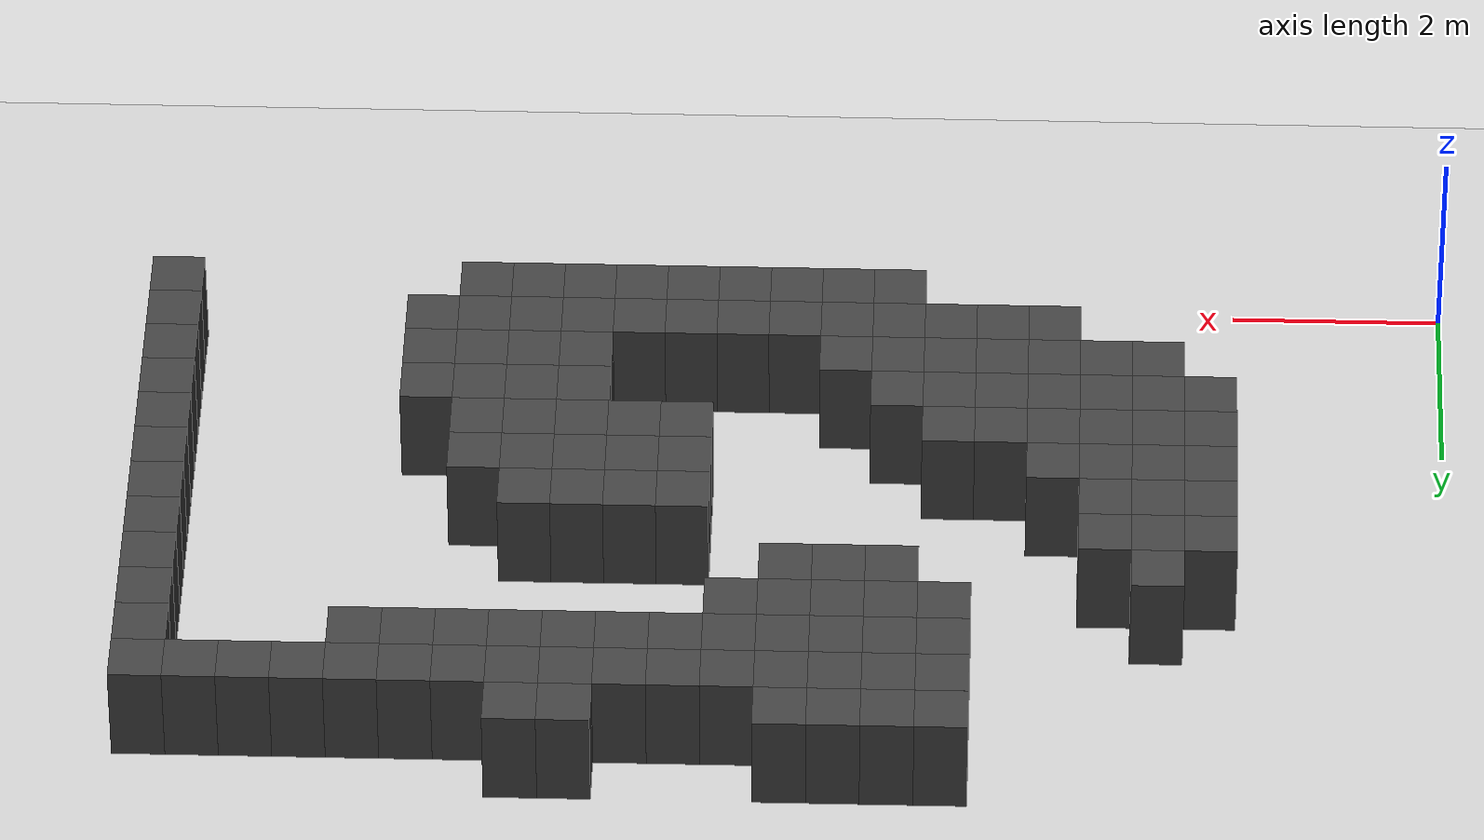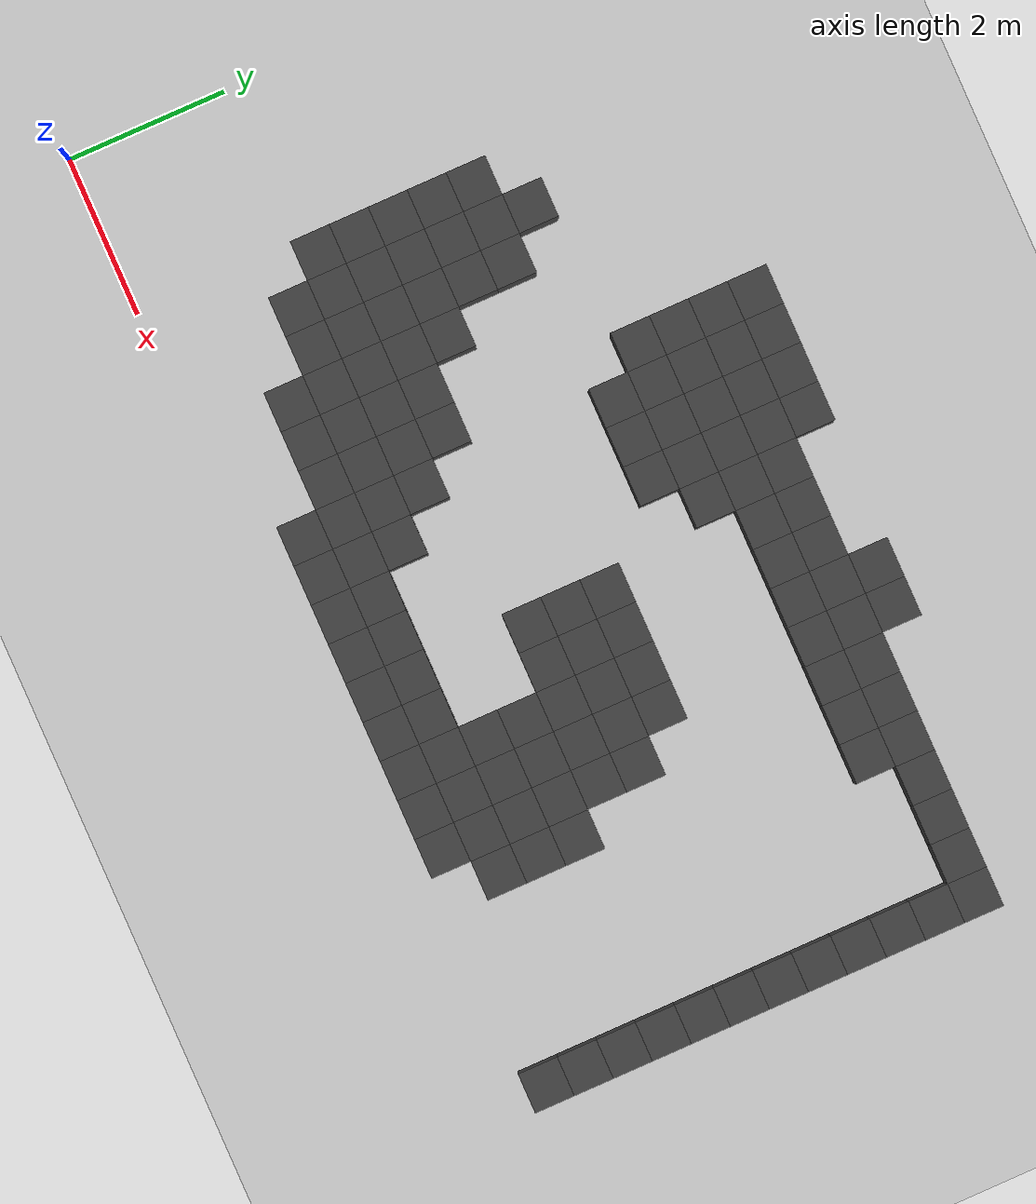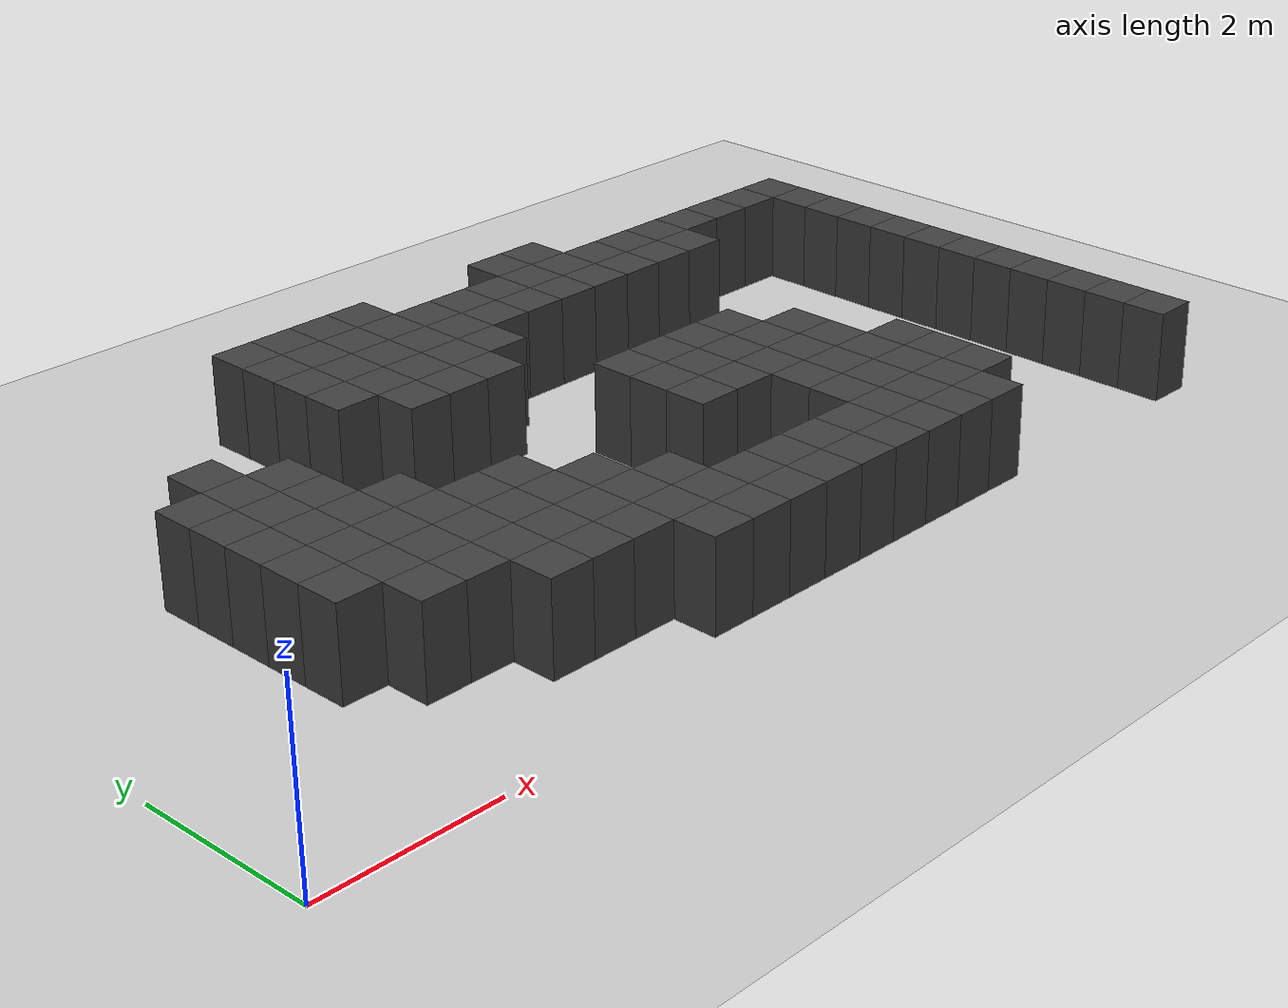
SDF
<sdf version="1.7">
 <world name="map_8843">
  <model name="ground_plane">
   <static>true</static>
   <link name="link">
    <collision name="collision">
     <geometry><plane><normal>0 0 1</normal><size>200 200</size></plane></geometry>
    </collision>
    <visual name="visual">
     <geometry><plane><normal>0 0 1</normal><size>200 200</size></plane></geometry>
     <material><ambient>0.8 0.8 0.8 1</ambient><diffuse>0.8 0.8 0.8 1</diffuse></material>
    </visual>
   </link>
  </model>
  <model name="maze_environment">
   <static>true</static>
   <link name="wall_264">
    <pose>4.750 6.750 0.500 0 0 0</pose>
    <collision name="col"><geometry><box><size>0.5 0.5 1.0</size></box></geometry></collision>
    <visual name="vis">
     <geometry><box><size>0.5 0.5 1.0</size></box></geometry>
     <material><ambient>0.15 0.15 0.15 1</ambient><diffuse>0.25 0.25 0.25 1</diffuse></material>
    </visual>
   </link>
   <link name="wall_265">
    <pose>5.250 6.750 0.500 0 0 0</pose>
    <collision name="col"><geometry><box><size>0.5 0.5 1.0</size></box></geometry></collision>
    <visual name="vis">
     <geometry><box><size>0.5 0.5 1.0</size></box></geometry>
     <material><ambient>0.15 0.15 0.15 1</ambient><diffuse>0.25 0.25 0.25 1</diffuse></material>
    </visual>
   </link>
   <link name="wall_266">
    <pose>5.750 6.750 0.500 0 0 0</pose>
    <collision name="col"><geometry><box><size>0.5 0.5 1.0</size></box></geometry></collision>
    <visual name="vis">
     <geometry><box><size>0.5 0.5 1.0</size></box></geometry>
     <material><ambient>0.15 0.15 0.15 1</ambient><diffuse>0.25 0.25 0.25 1</diffuse></material>
    </visual>
   </link>
   <link name="wall_267">
    <pose>6.250 6.750 0.500 0 0 0</pose>
    <collision name="col"><geometry><box><size>0.5 0.5 1.0</size></box></geometry></collision>
    <visual name="vis">
     <geometry><box><size>0.5 0.5 1.0</size></box></geometry>
     <material><ambient>0.15 0.15 0.15 1</ambient><diffuse>0.25 0.25 0.25 1</diffuse></material>
    </visual>
   </link>
   <link name="wall_268">
    <pose>8.250 6.750 0.500 0 0 0</pose>
    <collision name="col"><geometry><box><size>0.5 0.5 1.0</size></box></geometry></collision>
    <visual name="vis">
     <geometry><box><size>0.5 0.5 1.0</size></box></geometry>
     <material><ambient>0.15 0.15 0.15 1</ambient><diffuse>0.25 0.25 0.25 1</diffuse></material>
    </visual>
   </link>
   <link name="wall_269">
    <pose>8.750 6.750 0.500 0 0 0</pose>
    <collision name="col"><geometry><box><size>0.5 0.5 1.0</size></box></geometry></collision>
    <visual name="vis">
     <geometry><box><size>0.5 0.5 1.0</size></box></geometry>
     <material><ambient>0.15 0.15 0.15 1</ambient><diffuse>0.25 0.25 0.25 1</diffuse></material>
    </visual>
   </link>
   <link name="wall_283">
    <pose>4.750 6.250 0.500 0 0 0</pose>
    <collision name="col"><geometry><box><size>0.5 0.5 1.0</size></box></geometry></collision>
    <visual name="vis">
     <geometry><box><size>0.5 0.5 1.0</size></box></geometry>
     <material><ambient>0.15 0.15 0.15 1</ambient><diffuse>0.25 0.25 0.25 1</diffuse></material>
    </visual>
   </link>
   <link name="wall_284">
    <pose>5.250 6.250 0.500 0 0 0</pose>
    <collision name="col"><geometry><box><size>0.5 0.5 1.0</size></box></geometry></collision>
    <visual name="vis">
     <geometry><box><size>0.5 0.5 1.0</size></box></geometry>
     <material><ambient>0.15 0.15 0.15 1</ambient><diffuse>0.25 0.25 0.25 1</diffuse></material>
    </visual>
   </link>
   <link name="wall_285">
    <pose>5.750 6.250 0.500 0 0 0</pose>
    <collision name="col"><geometry><box><size>0.5 0.5 1.0</size></box></geometry></collision>
    <visual name="vis">
     <geometry><box><size>0.5 0.5 1.0</size></box></geometry>
     <material><ambient>0.15 0.15 0.15 1</ambient><diffuse>0.25 0.25 0.25 1</diffuse></material>
    </visual>
   </link>
   <link name="wall_286">
    <pose>6.250 6.250 0.500 0 0 0</pose>
    <collision name="col"><geometry><box><size>0.5 0.5 1.0</size></box></geometry></collision>
    <visual name="vis">
     <geometry><box><size>0.5 0.5 1.0</size></box></geometry>
     <material><ambient>0.15 0.15 0.15 1</ambient><diffuse>0.25 0.25 0.25 1</diffuse></material>
    </visual>
   </link>
   <link name="wall_287">
    <pose>6.750 6.250 0.500 0 0 0</pose>
    <collision name="col"><geometry><box><size>0.5 0.5 1.0</size></box></geometry></collision>
    <visual name="vis">
     <geometry><box><size>0.5 0.5 1.0</size></box></geometry>
     <material><ambient>0.15 0.15 0.15 1</ambient><diffuse>0.25 0.25 0.25 1</diffuse></material>
    </visual>
   </link>
   <link name="wall_288">
    <pose>7.250 6.250 0.500 0 0 0</pose>
    <collision name="col"><geometry><box><size>0.5 0.5 1.0</size></box></geometry></collision>
    <visual name="vis">
     <geometry><box><size>0.5 0.5 1.0</size></box></geometry>
     <material><ambient>0.15 0.15 0.15 1</ambient><diffuse>0.25 0.25 0.25 1</diffuse></material>
    </visual>
   </link>
   <link name="wall_289">
    <pose>7.750 6.250 0.500 0 0 0</pose>
    <collision name="col"><geometry><box><size>0.5 0.5 1.0</size></box></geometry></collision>
    <visual name="vis">
     <geometry><box><size>0.5 0.5 1.0</size></box></geometry>
     <material><ambient>0.15 0.15 0.15 1</ambient><diffuse>0.25 0.25 0.25 1</diffuse></material>
    </visual>
   </link>
   <link name="wall_290">
    <pose>8.250 6.250 0.500 0 0 0</pose>
    <collision name="col"><geometry><box><size>0.5 0.5 1.0</size></box></geometry></collision>
    <visual name="vis">
     <geometry><box><size>0.5 0.5 1.0</size></box></geometry>
     <material><ambient>0.15 0.15 0.15 1</ambient><diffuse>0.25 0.25 0.25 1</diffuse></material>
    </visual>
   </link>
   <link name="wall_291">
    <pose>8.750 6.250 0.500 0 0 0</pose>
    <collision name="col"><geometry><box><size>0.5 0.5 1.0</size></box></geometry></collision>
    <visual name="vis">
     <geometry><box><size>0.5 0.5 1.0</size></box></geometry>
     <material><ambient>0.15 0.15 0.15 1</ambient><diffuse>0.25 0.25 0.25 1</diffuse></material>
    </visual>
   </link>
   <link name="wall_292">
    <pose>9.250 6.250 0.500 0 0 0</pose>
    <collision name="col"><geometry><box><size>0.5 0.5 1.0</size></box></geometry></collision>
    <visual name="vis">
     <geometry><box><size>0.5 0.5 1.0</size></box></geometry>
     <material><ambient>0.15 0.15 0.15 1</ambient><diffuse>0.25 0.25 0.25 1</diffuse></material>
    </visual>
   </link>
   <link name="wall_293">
    <pose>9.750 6.250 0.500 0 0 0</pose>
    <collision name="col"><geometry><box><size>0.5 0.5 1.0</size></box></geometry></collision>
    <visual name="vis">
     <geometry><box><size>0.5 0.5 1.0</size></box></geometry>
     <material><ambient>0.15 0.15 0.15 1</ambient><diffuse>0.25 0.25 0.25 1</diffuse></material>
    </visual>
   </link>
   <link name="wall_294">
    <pose>10.250 6.250 0.500 0 0 0</pose>
    <collision name="col"><geometry><box><size>0.5 0.5 1.0</size></box></geometry></collision>
    <visual name="vis">
     <geometry><box><size>0.5 0.5 1.0</size></box></geometry>
     <material><ambient>0.15 0.15 0.15 1</ambient><diffuse>0.25 0.25 0.25 1</diffuse></material>
    </visual>
   </link>
   <link name="wall_295">
    <pose>10.750 6.250 0.500 0 0 0</pose>
    <collision name="col"><geometry><box><size>0.5 0.5 1.0</size></box></geometry></collision>
    <visual name="vis">
     <geometry><box><size>0.5 0.5 1.0</size></box></geometry>
     <material><ambient>0.15 0.15 0.15 1</ambient><diffuse>0.25 0.25 0.25 1</diffuse></material>
    </visual>
   </link>
   <link name="wall_296">
    <pose>11.250 6.250 0.500 0 0 0</pose>
    <collision name="col"><geometry><box><size>0.5 0.5 1.0</size></box></geometry></collision>
    <visual name="vis">
     <geometry><box><size>0.5 0.5 1.0</size></box></geometry>
     <material><ambient>0.15 0.15 0.15 1</ambient><diffuse>0.25 0.25 0.25 1</diffuse></material>
    </visual>
   </link>
   <link name="wall_297">
    <pose>11.750 6.250 0.500 0 0 0</pose>
    <collision name="col"><geometry><box><size>0.5 0.5 1.0</size></box></geometry></collision>
    <visual name="vis">
     <geometry><box><size>0.5 0.5 1.0</size></box></geometry>
     <material><ambient>0.15 0.15 0.15 1</ambient><diffuse>0.25 0.25 0.25 1</diffuse></material>
    </visual>
   </link>
   <link name="wall_298">
    <pose>12.250 6.250 0.500 0 0 0</pose>
    <collision name="col"><geometry><box><size>0.5 0.5 1.0</size></box></geometry></collision>
    <visual name="vis">
     <geometry><box><size>0.5 0.5 1.0</size></box></geometry>
     <material><ambient>0.15 0.15 0.15 1</ambient><diffuse>0.25 0.25 0.25 1</diffuse></material>
    </visual>
   </link>
   <link name="wall_305">
    <pose>4.750 5.750 0.500 0 0 0</pose>
    <collision name="col"><geometry><box><size>0.5 0.5 1.0</size></box></geometry></collision>
    <visual name="vis">
     <geometry><box><size>0.5 0.5 1.0</size></box></geometry>
     <material><ambient>0.15 0.15 0.15 1</ambient><diffuse>0.25 0.25 0.25 1</diffuse></material>
    </visual>
   </link>
   <link name="wall_306">
    <pose>5.250 5.750 0.500 0 0 0</pose>
    <collision name="col"><geometry><box><size>0.5 0.5 1.0</size></box></geometry></collision>
    <visual name="vis">
     <geometry><box><size>0.5 0.5 1.0</size></box></geometry>
     <material><ambient>0.15 0.15 0.15 1</ambient><diffuse>0.25 0.25 0.25 1</diffuse></material>
    </visual>
   </link>
   <link name="wall_307">
    <pose>5.750 5.750 0.500 0 0 0</pose>
    <collision name="col"><geometry><box><size>0.5 0.5 1.0</size></box></geometry></collision>
    <visual name="vis">
     <geometry><box><size>0.5 0.5 1.0</size></box></geometry>
     <material><ambient>0.15 0.15 0.15 1</ambient><diffuse>0.25 0.25 0.25 1</diffuse></material>
    </visual>
   </link>
   <link name="wall_308">
    <pose>6.250 5.750 0.500 0 0 0</pose>
    <collision name="col"><geometry><box><size>0.5 0.5 1.0</size></box></geometry></collision>
    <visual name="vis">
     <geometry><box><size>0.5 0.5 1.0</size></box></geometry>
     <material><ambient>0.15 0.15 0.15 1</ambient><diffuse>0.25 0.25 0.25 1</diffuse></material>
    </visual>
   </link>
   <link name="wall_309">
    <pose>6.750 5.750 0.500 0 0 0</pose>
    <collision name="col"><geometry><box><size>0.5 0.5 1.0</size></box></geometry></collision>
    <visual name="vis">
     <geometry><box><size>0.5 0.5 1.0</size></box></geometry>
     <material><ambient>0.15 0.15 0.15 1</ambient><diffuse>0.25 0.25 0.25 1</diffuse></material>
    </visual>
   </link>
   <link name="wall_310">
    <pose>7.250 5.750 0.500 0 0 0</pose>
    <collision name="col"><geometry><box><size>0.5 0.5 1.0</size></box></geometry></collision>
    <visual name="vis">
     <geometry><box><size>0.5 0.5 1.0</size></box></geometry>
     <material><ambient>0.15 0.15 0.15 1</ambient><diffuse>0.25 0.25 0.25 1</diffuse></material>
    </visual>
   </link>
   <link name="wall_311">
    <pose>7.750 5.750 0.500 0 0 0</pose>
    <collision name="col"><geometry><box><size>0.5 0.5 1.0</size></box></geometry></collision>
    <visual name="vis">
     <geometry><box><size>0.5 0.5 1.0</size></box></geometry>
     <material><ambient>0.15 0.15 0.15 1</ambient><diffuse>0.25 0.25 0.25 1</diffuse></material>
    </visual>
   </link>
   <link name="wall_312">
    <pose>8.250 5.750 0.500 0 0 0</pose>
    <collision name="col"><geometry><box><size>0.5 0.5 1.0</size></box></geometry></collision>
    <visual name="vis">
     <geometry><box><size>0.5 0.5 1.0</size></box></geometry>
     <material><ambient>0.15 0.15 0.15 1</ambient><diffuse>0.25 0.25 0.25 1</diffuse></material>
    </visual>
   </link>
   <link name="wall_313">
    <pose>8.750 5.750 0.500 0 0 0</pose>
    <collision name="col"><geometry><box><size>0.5 0.5 1.0</size></box></geometry></collision>
    <visual name="vis">
     <geometry><box><size>0.5 0.5 1.0</size></box></geometry>
     <material><ambient>0.15 0.15 0.15 1</ambient><diffuse>0.25 0.25 0.25 1</diffuse></material>
    </visual>
   </link>
   <link name="wall_314">
    <pose>9.250 5.750 0.500 0 0 0</pose>
    <collision name="col"><geometry><box><size>0.5 0.5 1.0</size></box></geometry></collision>
    <visual name="vis">
     <geometry><box><size>0.5 0.5 1.0</size></box></geometry>
     <material><ambient>0.15 0.15 0.15 1</ambient><diffuse>0.25 0.25 0.25 1</diffuse></material>
    </visual>
   </link>
   <link name="wall_315">
    <pose>9.750 5.750 0.500 0 0 0</pose>
    <collision name="col"><geometry><box><size>0.5 0.5 1.0</size></box></geometry></collision>
    <visual name="vis">
     <geometry><box><size>0.5 0.5 1.0</size></box></geometry>
     <material><ambient>0.15 0.15 0.15 1</ambient><diffuse>0.25 0.25 0.25 1</diffuse></material>
    </visual>
   </link>
   <link name="wall_316">
    <pose>10.250 5.750 0.500 0 0 0</pose>
    <collision name="col"><geometry><box><size>0.5 0.5 1.0</size></box></geometry></collision>
    <visual name="vis">
     <geometry><box><size>0.5 0.5 1.0</size></box></geometry>
     <material><ambient>0.15 0.15 0.15 1</ambient><diffuse>0.25 0.25 0.25 1</diffuse></material>
    </visual>
   </link>
   <link name="wall_317">
    <pose>12.250 5.750 0.500 0 0 0</pose>
    <collision name="col"><geometry><box><size>0.5 0.5 1.0</size></box></geometry></collision>
    <visual name="vis">
     <geometry><box><size>0.5 0.5 1.0</size></box></geometry>
     <material><ambient>0.15 0.15 0.15 1</ambient><diffuse>0.25 0.25 0.25 1</diffuse></material>
    </visual>
   </link>
   <link name="wall_324">
    <pose>4.750 5.250 0.500 0 0 0</pose>
    <collision name="col"><geometry><box><size>0.5 0.5 1.0</size></box></geometry></collision>
    <visual name="vis">
     <geometry><box><size>0.5 0.5 1.0</size></box></geometry>
     <material><ambient>0.15 0.15 0.15 1</ambient><diffuse>0.25 0.25 0.25 1</diffuse></material>
    </visual>
   </link>
   <link name="wall_325">
    <pose>5.250 5.250 0.500 0 0 0</pose>
    <collision name="col"><geometry><box><size>0.5 0.5 1.0</size></box></geometry></collision>
    <visual name="vis">
     <geometry><box><size>0.5 0.5 1.0</size></box></geometry>
     <material><ambient>0.15 0.15 0.15 1</ambient><diffuse>0.25 0.25 0.25 1</diffuse></material>
    </visual>
   </link>
   <link name="wall_326">
    <pose>5.750 5.250 0.500 0 0 0</pose>
    <collision name="col"><geometry><box><size>0.5 0.5 1.0</size></box></geometry></collision>
    <visual name="vis">
     <geometry><box><size>0.5 0.5 1.0</size></box></geometry>
     <material><ambient>0.15 0.15 0.15 1</ambient><diffuse>0.25 0.25 0.25 1</diffuse></material>
    </visual>
   </link>
   <link name="wall_327">
    <pose>6.250 5.250 0.500 0 0 0</pose>
    <collision name="col"><geometry><box><size>0.5 0.5 1.0</size></box></geometry></collision>
    <visual name="vis">
     <geometry><box><size>0.5 0.5 1.0</size></box></geometry>
     <material><ambient>0.15 0.15 0.15 1</ambient><diffuse>0.25 0.25 0.25 1</diffuse></material>
    </visual>
   </link>
   <link name="wall_328">
    <pose>6.750 5.250 0.500 0 0 0</pose>
    <collision name="col"><geometry><box><size>0.5 0.5 1.0</size></box></geometry></collision>
    <visual name="vis">
     <geometry><box><size>0.5 0.5 1.0</size></box></geometry>
     <material><ambient>0.15 0.15 0.15 1</ambient><diffuse>0.25 0.25 0.25 1</diffuse></material>
    </visual>
   </link>
   <link name="wall_329">
    <pose>12.250 5.250 0.500 0 0 0</pose>
    <collision name="col"><geometry><box><size>0.5 0.5 1.0</size></box></geometry></collision>
    <visual name="vis">
     <geometry><box><size>0.5 0.5 1.0</size></box></geometry>
     <material><ambient>0.15 0.15 0.15 1</ambient><diffuse>0.25 0.25 0.25 1</diffuse></material>
    </visual>
   </link>
   <link name="wall_338">
    <pose>2.750 4.750 0.500 0 0 0</pose>
    <collision name="col"><geometry><box><size>0.5 0.5 1.0</size></box></geometry></collision>
    <visual name="vis">
     <geometry><box><size>0.5 0.5 1.0</size></box></geometry>
     <material><ambient>0.15 0.15 0.15 1</ambient><diffuse>0.25 0.25 0.25 1</diffuse></material>
    </visual>
   </link>
   <link name="wall_339">
    <pose>5.250 4.750 0.500 0 0 0</pose>
    <collision name="col"><geometry><box><size>0.5 0.5 1.0</size></box></geometry></collision>
    <visual name="vis">
     <geometry><box><size>0.5 0.5 1.0</size></box></geometry>
     <material><ambient>0.15 0.15 0.15 1</ambient><diffuse>0.25 0.25 0.25 1</diffuse></material>
    </visual>
   </link>
   <link name="wall_340">
    <pose>5.750 4.750 0.500 0 0 0</pose>
    <collision name="col"><geometry><box><size>0.5 0.5 1.0</size></box></geometry></collision>
    <visual name="vis">
     <geometry><box><size>0.5 0.5 1.0</size></box></geometry>
     <material><ambient>0.15 0.15 0.15 1</ambient><diffuse>0.25 0.25 0.25 1</diffuse></material>
    </visual>
   </link>
   <link name="wall_341">
    <pose>6.250 4.750 0.500 0 0 0</pose>
    <collision name="col"><geometry><box><size>0.5 0.5 1.0</size></box></geometry></collision>
    <visual name="vis">
     <geometry><box><size>0.5 0.5 1.0</size></box></geometry>
     <material><ambient>0.15 0.15 0.15 1</ambient><diffuse>0.25 0.25 0.25 1</diffuse></material>
    </visual>
   </link>
   <link name="wall_342">
    <pose>12.250 4.750 0.500 0 0 0</pose>
    <collision name="col"><geometry><box><size>0.5 0.5 1.0</size></box></geometry></collision>
    <visual name="vis">
     <geometry><box><size>0.5 0.5 1.0</size></box></geometry>
     <material><ambient>0.15 0.15 0.15 1</ambient><diffuse>0.25 0.25 0.25 1</diffuse></material>
    </visual>
   </link>
   <link name="wall_351">
    <pose>2.250 4.250 0.500 0 0 0</pose>
    <collision name="col"><geometry><box><size>0.5 0.5 1.0</size></box></geometry></collision>
    <visual name="vis">
     <geometry><box><size>0.5 0.5 1.0</size></box></geometry>
     <material><ambient>0.15 0.15 0.15 1</ambient><diffuse>0.25 0.25 0.25 1</diffuse></material>
    </visual>
   </link>
   <link name="wall_352">
    <pose>2.750 4.250 0.500 0 0 0</pose>
    <collision name="col"><geometry><box><size>0.5 0.5 1.0</size></box></geometry></collision>
    <visual name="vis">
     <geometry><box><size>0.5 0.5 1.0</size></box></geometry>
     <material><ambient>0.15 0.15 0.15 1</ambient><diffuse>0.25 0.25 0.25 1</diffuse></material>
    </visual>
   </link>
   <link name="wall_353">
    <pose>3.250 4.250 0.500 0 0 0</pose>
    <collision name="col"><geometry><box><size>0.5 0.5 1.0</size></box></geometry></collision>
    <visual name="vis">
     <geometry><box><size>0.5 0.5 1.0</size></box></geometry>
     <material><ambient>0.15 0.15 0.15 1</ambient><diffuse>0.25 0.25 0.25 1</diffuse></material>
    </visual>
   </link>
   <link name="wall_354">
    <pose>12.250 4.250 0.500 0 0 0</pose>
    <collision name="col"><geometry><box><size>0.5 0.5 1.0</size></box></geometry></collision>
    <visual name="vis">
     <geometry><box><size>0.5 0.5 1.0</size></box></geometry>
     <material><ambient>0.15 0.15 0.15 1</ambient><diffuse>0.25 0.25 0.25 1</diffuse></material>
    </visual>
   </link>
   <link name="wall_361">
    <pose>2.250 3.750 0.500 0 0 0</pose>
    <collision name="col"><geometry><box><size>0.5 0.5 1.0</size></box></geometry></collision>
    <visual name="vis">
     <geometry><box><size>0.5 0.5 1.0</size></box></geometry>
     <material><ambient>0.15 0.15 0.15 1</ambient><diffuse>0.25 0.25 0.25 1</diffuse></material>
    </visual>
   </link>
   <link name="wall_362">
    <pose>2.750 3.750 0.500 0 0 0</pose>
    <collision name="col"><geometry><box><size>0.5 0.5 1.0</size></box></geometry></collision>
    <visual name="vis">
     <geometry><box><size>0.5 0.5 1.0</size></box></geometry>
     <material><ambient>0.15 0.15 0.15 1</ambient><diffuse>0.25 0.25 0.25 1</diffuse></material>
    </visual>
   </link>
   <link name="wall_363">
    <pose>3.250 3.750 0.500 0 0 0</pose>
    <collision name="col"><geometry><box><size>0.5 0.5 1.0</size></box></geometry></collision>
    <visual name="vis">
     <geometry><box><size>0.5 0.5 1.0</size></box></geometry>
     <material><ambient>0.15 0.15 0.15 1</ambient><diffuse>0.25 0.25 0.25 1</diffuse></material>
    </visual>
   </link>
   <link name="wall_364">
    <pose>7.250 3.750 0.500 0 0 0</pose>
    <collision name="col"><geometry><box><size>0.5 0.5 1.0</size></box></geometry></collision>
    <visual name="vis">
     <geometry><box><size>0.5 0.5 1.0</size></box></geometry>
     <material><ambient>0.15 0.15 0.15 1</ambient><diffuse>0.25 0.25 0.25 1</diffuse></material>
    </visual>
   </link>
   <link name="wall_365">
    <pose>7.750 3.750 0.500 0 0 0</pose>
    <collision name="col"><geometry><box><size>0.5 0.5 1.0</size></box></geometry></collision>
    <visual name="vis">
     <geometry><box><size>0.5 0.5 1.0</size></box></geometry>
     <material><ambient>0.15 0.15 0.15 1</ambient><diffuse>0.25 0.25 0.25 1</diffuse></material>
    </visual>
   </link>
   <link name="wall_366">
    <pose>8.250 3.750 0.500 0 0 0</pose>
    <collision name="col"><geometry><box><size>0.5 0.5 1.0</size></box></geometry></collision>
    <visual name="vis">
     <geometry><box><size>0.5 0.5 1.0</size></box></geometry>
     <material><ambient>0.15 0.15 0.15 1</ambient><diffuse>0.25 0.25 0.25 1</diffuse></material>
    </visual>
   </link>
   <link name="wall_367">
    <pose>8.750 3.750 0.500 0 0 0</pose>
    <collision name="col"><geometry><box><size>0.5 0.5 1.0</size></box></geometry></collision>
    <visual name="vis">
     <geometry><box><size>0.5 0.5 1.0</size></box></geometry>
     <material><ambient>0.15 0.15 0.15 1</ambient><diffuse>0.25 0.25 0.25 1</diffuse></material>
    </visual>
   </link>
   <link name="wall_368">
    <pose>12.250 3.750 0.500 0 0 0</pose>
    <collision name="col"><geometry><box><size>0.5 0.5 1.0</size></box></geometry></collision>
    <visual name="vis">
     <geometry><box><size>0.5 0.5 1.0</size></box></geometry>
     <material><ambient>0.15 0.15 0.15 1</ambient><diffuse>0.25 0.25 0.25 1</diffuse></material>
    </visual>
   </link>
   <link name="wall_371">
    <pose>2.250 3.250 0.500 0 0 0</pose>
    <collision name="col"><geometry><box><size>0.5 0.5 1.0</size></box></geometry></collision>
    <visual name="vis">
     <geometry><box><size>0.5 0.5 1.0</size></box></geometry>
     <material><ambient>0.15 0.15 0.15 1</ambient><diffuse>0.25 0.25 0.25 1</diffuse></material>
    </visual>
   </link>
   <link name="wall_372">
    <pose>2.750 3.250 0.500 0 0 0</pose>
    <collision name="col"><geometry><box><size>0.5 0.5 1.0</size></box></geometry></collision>
    <visual name="vis">
     <geometry><box><size>0.5 0.5 1.0</size></box></geometry>
     <material><ambient>0.15 0.15 0.15 1</ambient><diffuse>0.25 0.25 0.25 1</diffuse></material>
    </visual>
   </link>
   <link name="wall_373">
    <pose>3.250 3.250 0.500 0 0 0</pose>
    <collision name="col"><geometry><box><size>0.5 0.5 1.0</size></box></geometry></collision>
    <visual name="vis">
     <geometry><box><size>0.5 0.5 1.0</size></box></geometry>
     <material><ambient>0.15 0.15 0.15 1</ambient><diffuse>0.25 0.25 0.25 1</diffuse></material>
    </visual>
   </link>
   <link name="wall_374">
    <pose>3.750 3.250 0.500 0 0 0</pose>
    <collision name="col"><geometry><box><size>0.5 0.5 1.0</size></box></geometry></collision>
    <visual name="vis">
     <geometry><box><size>0.5 0.5 1.0</size></box></geometry>
     <material><ambient>0.15 0.15 0.15 1</ambient><diffuse>0.25 0.25 0.25 1</diffuse></material>
    </visual>
   </link>
   <link name="wall_375">
    <pose>7.250 3.250 0.500 0 0 0</pose>
    <collision name="col"><geometry><box><size>0.5 0.5 1.0</size></box></geometry></collision>
    <visual name="vis">
     <geometry><box><size>0.5 0.5 1.0</size></box></geometry>
     <material><ambient>0.15 0.15 0.15 1</ambient><diffuse>0.25 0.25 0.25 1</diffuse></material>
    </visual>
   </link>
   <link name="wall_376">
    <pose>7.750 3.250 0.500 0 0 0</pose>
    <collision name="col"><geometry><box><size>0.5 0.5 1.0</size></box></geometry></collision>
    <visual name="vis">
     <geometry><box><size>0.5 0.5 1.0</size></box></geometry>
     <material><ambient>0.15 0.15 0.15 1</ambient><diffuse>0.25 0.25 0.25 1</diffuse></material>
    </visual>
   </link>
   <link name="wall_377">
    <pose>8.250 3.250 0.500 0 0 0</pose>
    <collision name="col"><geometry><box><size>0.5 0.5 1.0</size></box></geometry></collision>
    <visual name="vis">
     <geometry><box><size>0.5 0.5 1.0</size></box></geometry>
     <material><ambient>0.15 0.15 0.15 1</ambient><diffuse>0.25 0.25 0.25 1</diffuse></material>
    </visual>
   </link>
   <link name="wall_378">
    <pose>8.750 3.250 0.500 0 0 0</pose>
    <collision name="col"><geometry><box><size>0.5 0.5 1.0</size></box></geometry></collision>
    <visual name="vis">
     <geometry><box><size>0.5 0.5 1.0</size></box></geometry>
     <material><ambient>0.15 0.15 0.15 1</ambient><diffuse>0.25 0.25 0.25 1</diffuse></material>
    </visual>
   </link>
   <link name="wall_379">
    <pose>9.250 3.250 0.500 0 0 0</pose>
    <collision name="col"><geometry><box><size>0.5 0.5 1.0</size></box></geometry></collision>
    <visual name="vis">
     <geometry><box><size>0.5 0.5 1.0</size></box></geometry>
     <material><ambient>0.15 0.15 0.15 1</ambient><diffuse>0.25 0.25 0.25 1</diffuse></material>
    </visual>
   </link>
   <link name="wall_380">
    <pose>12.250 3.250 0.500 0 0 0</pose>
    <collision name="col"><geometry><box><size>0.5 0.5 1.0</size></box></geometry></collision>
    <visual name="vis">
     <geometry><box><size>0.5 0.5 1.0</size></box></geometry>
     <material><ambient>0.15 0.15 0.15 1</ambient><diffuse>0.25 0.25 0.25 1</diffuse></material>
    </visual>
   </link>
   <link name="wall_383">
    <pose>2.250 2.750 0.500 0 0 0</pose>
    <collision name="col"><geometry><box><size>0.5 0.5 1.0</size></box></geometry></collision>
    <visual name="vis">
     <geometry><box><size>0.5 0.5 1.0</size></box></geometry>
     <material><ambient>0.15 0.15 0.15 1</ambient><diffuse>0.25 0.25 0.25 1</diffuse></material>
    </visual>
   </link>
   <link name="wall_384">
    <pose>2.750 2.750 0.500 0 0 0</pose>
    <collision name="col"><geometry><box><size>0.5 0.5 1.0</size></box></geometry></collision>
    <visual name="vis">
     <geometry><box><size>0.5 0.5 1.0</size></box></geometry>
     <material><ambient>0.15 0.15 0.15 1</ambient><diffuse>0.25 0.25 0.25 1</diffuse></material>
    </visual>
   </link>
   <link name="wall_385">
    <pose>3.250 2.750 0.500 0 0 0</pose>
    <collision name="col"><geometry><box><size>0.5 0.5 1.0</size></box></geometry></collision>
    <visual name="vis">
     <geometry><box><size>0.5 0.5 1.0</size></box></geometry>
     <material><ambient>0.15 0.15 0.15 1</ambient><diffuse>0.25 0.25 0.25 1</diffuse></material>
    </visual>
   </link>
   <link name="wall_386">
    <pose>3.750 2.750 0.500 0 0 0</pose>
    <collision name="col"><geometry><box><size>0.5 0.5 1.0</size></box></geometry></collision>
    <visual name="vis">
     <geometry><box><size>0.5 0.5 1.0</size></box></geometry>
     <material><ambient>0.15 0.15 0.15 1</ambient><diffuse>0.25 0.25 0.25 1</diffuse></material>
    </visual>
   </link>
   <link name="wall_387">
    <pose>4.250 2.750 0.500 0 0 0</pose>
    <collision name="col"><geometry><box><size>0.5 0.5 1.0</size></box></geometry></collision>
    <visual name="vis">
     <geometry><box><size>0.5 0.5 1.0</size></box></geometry>
     <material><ambient>0.15 0.15 0.15 1</ambient><diffuse>0.25 0.25 0.25 1</diffuse></material>
    </visual>
   </link>
   <link name="wall_388">
    <pose>4.750 2.750 0.500 0 0 0</pose>
    <collision name="col"><geometry><box><size>0.5 0.5 1.0</size></box></geometry></collision>
    <visual name="vis">
     <geometry><box><size>0.5 0.5 1.0</size></box></geometry>
     <material><ambient>0.15 0.15 0.15 1</ambient><diffuse>0.25 0.25 0.25 1</diffuse></material>
    </visual>
   </link>
   <link name="wall_389">
    <pose>7.250 2.750 0.500 0 0 0</pose>
    <collision name="col"><geometry><box><size>0.5 0.5 1.0</size></box></geometry></collision>
    <visual name="vis">
     <geometry><box><size>0.5 0.5 1.0</size></box></geometry>
     <material><ambient>0.15 0.15 0.15 1</ambient><diffuse>0.25 0.25 0.25 1</diffuse></material>
    </visual>
   </link>
   <link name="wall_390">
    <pose>7.750 2.750 0.500 0 0 0</pose>
    <collision name="col"><geometry><box><size>0.5 0.5 1.0</size></box></geometry></collision>
    <visual name="vis">
     <geometry><box><size>0.5 0.5 1.0</size></box></geometry>
     <material><ambient>0.15 0.15 0.15 1</ambient><diffuse>0.25 0.25 0.25 1</diffuse></material>
    </visual>
   </link>
   <link name="wall_391">
    <pose>8.250 2.750 0.500 0 0 0</pose>
    <collision name="col"><geometry><box><size>0.5 0.5 1.0</size></box></geometry></collision>
    <visual name="vis">
     <geometry><box><size>0.5 0.5 1.0</size></box></geometry>
     <material><ambient>0.15 0.15 0.15 1</ambient><diffuse>0.25 0.25 0.25 1</diffuse></material>
    </visual>
   </link>
   <link name="wall_392">
    <pose>8.750 2.750 0.500 0 0 0</pose>
    <collision name="col"><geometry><box><size>0.5 0.5 1.0</size></box></geometry></collision>
    <visual name="vis">
     <geometry><box><size>0.5 0.5 1.0</size></box></geometry>
     <material><ambient>0.15 0.15 0.15 1</ambient><diffuse>0.25 0.25 0.25 1</diffuse></material>
    </visual>
   </link>
   <link name="wall_393">
    <pose>9.250 2.750 0.500 0 0 0</pose>
    <collision name="col"><geometry><box><size>0.5 0.5 1.0</size></box></geometry></collision>
    <visual name="vis">
     <geometry><box><size>0.5 0.5 1.0</size></box></geometry>
     <material><ambient>0.15 0.15 0.15 1</ambient><diffuse>0.25 0.25 0.25 1</diffuse></material>
    </visual>
   </link>
   <link name="wall_394">
    <pose>12.250 2.750 0.500 0 0 0</pose>
    <collision name="col"><geometry><box><size>0.5 0.5 1.0</size></box></geometry></collision>
    <visual name="vis">
     <geometry><box><size>0.5 0.5 1.0</size></box></geometry>
     <material><ambient>0.15 0.15 0.15 1</ambient><diffuse>0.25 0.25 0.25 1</diffuse></material>
    </visual>
   </link>
   <link name="wall_398">
    <pose>2.250 2.250 0.500 0 0 0</pose>
    <collision name="col"><geometry><box><size>0.5 0.5 1.0</size></box></geometry></collision>
    <visual name="vis">
     <geometry><box><size>0.5 0.5 1.0</size></box></geometry>
     <material><ambient>0.15 0.15 0.15 1</ambient><diffuse>0.25 0.25 0.25 1</diffuse></material>
    </visual>
   </link>
   <link name="wall_399">
    <pose>2.750 2.250 0.500 0 0 0</pose>
    <collision name="col"><geometry><box><size>0.5 0.5 1.0</size></box></geometry></collision>
    <visual name="vis">
     <geometry><box><size>0.5 0.5 1.0</size></box></geometry>
     <material><ambient>0.15 0.15 0.15 1</ambient><diffuse>0.25 0.25 0.25 1</diffuse></material>
    </visual>
   </link>
   <link name="wall_400">
    <pose>3.250 2.250 0.500 0 0 0</pose>
    <collision name="col"><geometry><box><size>0.5 0.5 1.0</size></box></geometry></collision>
    <visual name="vis">
     <geometry><box><size>0.5 0.5 1.0</size></box></geometry>
     <material><ambient>0.15 0.15 0.15 1</ambient><diffuse>0.25 0.25 0.25 1</diffuse></material>
    </visual>
   </link>
   <link name="wall_401">
    <pose>3.750 2.250 0.500 0 0 0</pose>
    <collision name="col"><geometry><box><size>0.5 0.5 1.0</size></box></geometry></collision>
    <visual name="vis">
     <geometry><box><size>0.5 0.5 1.0</size></box></geometry>
     <material><ambient>0.15 0.15 0.15 1</ambient><diffuse>0.25 0.25 0.25 1</diffuse></material>
    </visual>
   </link>
   <link name="wall_402">
    <pose>4.250 2.250 0.500 0 0 0</pose>
    <collision name="col"><geometry><box><size>0.5 0.5 1.0</size></box></geometry></collision>
    <visual name="vis">
     <geometry><box><size>0.5 0.5 1.0</size></box></geometry>
     <material><ambient>0.15 0.15 0.15 1</ambient><diffuse>0.25 0.25 0.25 1</diffuse></material>
    </visual>
   </link>
   <link name="wall_403">
    <pose>4.750 2.250 0.500 0 0 0</pose>
    <collision name="col"><geometry><box><size>0.5 0.5 1.0</size></box></geometry></collision>
    <visual name="vis">
     <geometry><box><size>0.5 0.5 1.0</size></box></geometry>
     <material><ambient>0.15 0.15 0.15 1</ambient><diffuse>0.25 0.25 0.25 1</diffuse></material>
    </visual>
   </link>
   <link name="wall_404">
    <pose>5.250 2.250 0.500 0 0 0</pose>
    <collision name="col"><geometry><box><size>0.5 0.5 1.0</size></box></geometry></collision>
    <visual name="vis">
     <geometry><box><size>0.5 0.5 1.0</size></box></geometry>
     <material><ambient>0.15 0.15 0.15 1</ambient><diffuse>0.25 0.25 0.25 1</diffuse></material>
    </visual>
   </link>
   <link name="wall_405">
    <pose>8.250 2.250 0.500 0 0 0</pose>
    <collision name="col"><geometry><box><size>0.5 0.5 1.0</size></box></geometry></collision>
    <visual name="vis">
     <geometry><box><size>0.5 0.5 1.0</size></box></geometry>
     <material><ambient>0.15 0.15 0.15 1</ambient><diffuse>0.25 0.25 0.25 1</diffuse></material>
    </visual>
   </link>
   <link name="wall_406">
    <pose>8.750 2.250 0.500 0 0 0</pose>
    <collision name="col"><geometry><box><size>0.5 0.5 1.0</size></box></geometry></collision>
    <visual name="vis">
     <geometry><box><size>0.5 0.5 1.0</size></box></geometry>
     <material><ambient>0.15 0.15 0.15 1</ambient><diffuse>0.25 0.25 0.25 1</diffuse></material>
    </visual>
   </link>
   <link name="wall_407">
    <pose>9.250 2.250 0.500 0 0 0</pose>
    <collision name="col"><geometry><box><size>0.5 0.5 1.0</size></box></geometry></collision>
    <visual name="vis">
     <geometry><box><size>0.5 0.5 1.0</size></box></geometry>
     <material><ambient>0.15 0.15 0.15 1</ambient><diffuse>0.25 0.25 0.25 1</diffuse></material>
    </visual>
   </link>
   <link name="wall_408">
    <pose>9.750 2.250 0.500 0 0 0</pose>
    <collision name="col"><geometry><box><size>0.5 0.5 1.0</size></box></geometry></collision>
    <visual name="vis">
     <geometry><box><size>0.5 0.5 1.0</size></box></geometry>
     <material><ambient>0.15 0.15 0.15 1</ambient><diffuse>0.25 0.25 0.25 1</diffuse></material>
    </visual>
   </link>
   <link name="wall_409">
    <pose>12.250 2.250 0.500 0 0 0</pose>
    <collision name="col"><geometry><box><size>0.5 0.5 1.0</size></box></geometry></collision>
    <visual name="vis">
     <geometry><box><size>0.5 0.5 1.0</size></box></geometry>
     <material><ambient>0.15 0.15 0.15 1</ambient><diffuse>0.25 0.25 0.25 1</diffuse></material>
    </visual>
   </link>
   <link name="wall_416">
    <pose>2.750 1.750 0.500 0 0 0</pose>
    <collision name="col"><geometry><box><size>0.5 0.5 1.0</size></box></geometry></collision>
    <visual name="vis">
     <geometry><box><size>0.5 0.5 1.0</size></box></geometry>
     <material><ambient>0.15 0.15 0.15 1</ambient><diffuse>0.25 0.25 0.25 1</diffuse></material>
    </visual>
   </link>
   <link name="wall_417">
    <pose>3.250 1.750 0.500 0 0 0</pose>
    <collision name="col"><geometry><box><size>0.5 0.5 1.0</size></box></geometry></collision>
    <visual name="vis">
     <geometry><box><size>0.5 0.5 1.0</size></box></geometry>
     <material><ambient>0.15 0.15 0.15 1</ambient><diffuse>0.25 0.25 0.25 1</diffuse></material>
    </visual>
   </link>
   <link name="wall_418">
    <pose>3.750 1.750 0.500 0 0 0</pose>
    <collision name="col"><geometry><box><size>0.5 0.5 1.0</size></box></geometry></collision>
    <visual name="vis">
     <geometry><box><size>0.5 0.5 1.0</size></box></geometry>
     <material><ambient>0.15 0.15 0.15 1</ambient><diffuse>0.25 0.25 0.25 1</diffuse></material>
    </visual>
   </link>
   <link name="wall_419">
    <pose>4.250 1.750 0.500 0 0 0</pose>
    <collision name="col"><geometry><box><size>0.5 0.5 1.0</size></box></geometry></collision>
    <visual name="vis">
     <geometry><box><size>0.5 0.5 1.0</size></box></geometry>
     <material><ambient>0.15 0.15 0.15 1</ambient><diffuse>0.25 0.25 0.25 1</diffuse></material>
    </visual>
   </link>
   <link name="wall_420">
    <pose>4.750 1.750 0.500 0 0 0</pose>
    <collision name="col"><geometry><box><size>0.5 0.5 1.0</size></box></geometry></collision>
    <visual name="vis">
     <geometry><box><size>0.5 0.5 1.0</size></box></geometry>
     <material><ambient>0.15 0.15 0.15 1</ambient><diffuse>0.25 0.25 0.25 1</diffuse></material>
    </visual>
   </link>
   <link name="wall_421">
    <pose>5.250 1.750 0.500 0 0 0</pose>
    <collision name="col"><geometry><box><size>0.5 0.5 1.0</size></box></geometry></collision>
    <visual name="vis">
     <geometry><box><size>0.5 0.5 1.0</size></box></geometry>
     <material><ambient>0.15 0.15 0.15 1</ambient><diffuse>0.25 0.25 0.25 1</diffuse></material>
    </visual>
   </link>
   <link name="wall_422">
    <pose>5.750 1.750 0.500 0 0 0</pose>
    <collision name="col"><geometry><box><size>0.5 0.5 1.0</size></box></geometry></collision>
    <visual name="vis">
     <geometry><box><size>0.5 0.5 1.0</size></box></geometry>
     <material><ambient>0.15 0.15 0.15 1</ambient><diffuse>0.25 0.25 0.25 1</diffuse></material>
    </visual>
   </link>
   <link name="wall_423">
    <pose>8.250 1.750 0.500 0 0 0</pose>
    <collision name="col"><geometry><box><size>0.5 0.5 1.0</size></box></geometry></collision>
    <visual name="vis">
     <geometry><box><size>0.5 0.5 1.0</size></box></geometry>
     <material><ambient>0.15 0.15 0.15 1</ambient><diffuse>0.25 0.25 0.25 1</diffuse></material>
    </visual>
   </link>
   <link name="wall_424">
    <pose>8.750 1.750 0.500 0 0 0</pose>
    <collision name="col"><geometry><box><size>0.5 0.5 1.0</size></box></geometry></collision>
    <visual name="vis">
     <geometry><box><size>0.5 0.5 1.0</size></box></geometry>
     <material><ambient>0.15 0.15 0.15 1</ambient><diffuse>0.25 0.25 0.25 1</diffuse></material>
    </visual>
   </link>
   <link name="wall_425">
    <pose>9.250 1.750 0.500 0 0 0</pose>
    <collision name="col"><geometry><box><size>0.5 0.5 1.0</size></box></geometry></collision>
    <visual name="vis">
     <geometry><box><size>0.5 0.5 1.0</size></box></geometry>
     <material><ambient>0.15 0.15 0.15 1</ambient><diffuse>0.25 0.25 0.25 1</diffuse></material>
    </visual>
   </link>
   <link name="wall_426">
    <pose>9.750 1.750 0.500 0 0 0</pose>
    <collision name="col"><geometry><box><size>0.5 0.5 1.0</size></box></geometry></collision>
    <visual name="vis">
     <geometry><box><size>0.5 0.5 1.0</size></box></geometry>
     <material><ambient>0.15 0.15 0.15 1</ambient><diffuse>0.25 0.25 0.25 1</diffuse></material>
    </visual>
   </link>
   <link name="wall_427">
    <pose>12.250 1.750 0.500 0 0 0</pose>
    <collision name="col"><geometry><box><size>0.5 0.5 1.0</size></box></geometry></collision>
    <visual name="vis">
     <geometry><box><size>0.5 0.5 1.0</size></box></geometry>
     <material><ambient>0.15 0.15 0.15 1</ambient><diffuse>0.25 0.25 0.25 1</diffuse></material>
    </visual>
   </link>
   <link name="wall_437">
    <pose>3.750 1.250 0.500 0 0 0</pose>
    <collision name="col"><geometry><box><size>0.5 0.5 1.0</size></box></geometry></collision>
    <visual name="vis">
     <geometry><box><size>0.5 0.5 1.0</size></box></geometry>
     <material><ambient>0.15 0.15 0.15 1</ambient><diffuse>0.25 0.25 0.25 1</diffuse></material>
    </visual>
   </link>
   <link name="wall_438">
    <pose>4.250 1.250 0.500 0 0 0</pose>
    <collision name="col"><geometry><box><size>0.5 0.5 1.0</size></box></geometry></collision>
    <visual name="vis">
     <geometry><box><size>0.5 0.5 1.0</size></box></geometry>
     <material><ambient>0.15 0.15 0.15 1</ambient><diffuse>0.25 0.25 0.25 1</diffuse></material>
    </visual>
   </link>
   <link name="wall_439">
    <pose>4.750 1.250 0.500 0 0 0</pose>
    <collision name="col"><geometry><box><size>0.5 0.5 1.0</size></box></geometry></collision>
    <visual name="vis">
     <geometry><box><size>0.5 0.5 1.0</size></box></geometry>
     <material><ambient>0.15 0.15 0.15 1</ambient><diffuse>0.25 0.25 0.25 1</diffuse></material>
    </visual>
   </link>
   <link name="wall_440">
    <pose>5.250 1.250 0.500 0 0 0</pose>
    <collision name="col"><geometry><box><size>0.5 0.5 1.0</size></box></geometry></collision>
    <visual name="vis">
     <geometry><box><size>0.5 0.5 1.0</size></box></geometry>
     <material><ambient>0.15 0.15 0.15 1</ambient><diffuse>0.25 0.25 0.25 1</diffuse></material>
    </visual>
   </link>
   <link name="wall_441">
    <pose>5.750 1.250 0.500 0 0 0</pose>
    <collision name="col"><geometry><box><size>0.5 0.5 1.0</size></box></geometry></collision>
    <visual name="vis">
     <geometry><box><size>0.5 0.5 1.0</size></box></geometry>
     <material><ambient>0.15 0.15 0.15 1</ambient><diffuse>0.25 0.25 0.25 1</diffuse></material>
    </visual>
   </link>
   <link name="wall_442">
    <pose>6.250 1.250 0.500 0 0 0</pose>
    <collision name="col"><geometry><box><size>0.5 0.5 1.0</size></box></geometry></collision>
    <visual name="vis">
     <geometry><box><size>0.5 0.5 1.0</size></box></geometry>
     <material><ambient>0.15 0.15 0.15 1</ambient><diffuse>0.25 0.25 0.25 1</diffuse></material>
    </visual>
   </link>
   <link name="wall_443">
    <pose>6.750 1.250 0.500 0 0 0</pose>
    <collision name="col"><geometry><box><size>0.5 0.5 1.0</size></box></geometry></collision>
    <visual name="vis">
     <geometry><box><size>0.5 0.5 1.0</size></box></geometry>
     <material><ambient>0.15 0.15 0.15 1</ambient><diffuse>0.25 0.25 0.25 1</diffuse></material>
    </visual>
   </link>
   <link name="wall_444">
    <pose>7.250 1.250 0.500 0 0 0</pose>
    <collision name="col"><geometry><box><size>0.5 0.5 1.0</size></box></geometry></collision>
    <visual name="vis">
     <geometry><box><size>0.5 0.5 1.0</size></box></geometry>
     <material><ambient>0.15 0.15 0.15 1</ambient><diffuse>0.25 0.25 0.25 1</diffuse></material>
    </visual>
   </link>
   <link name="wall_445">
    <pose>7.750 1.250 0.500 0 0 0</pose>
    <collision name="col"><geometry><box><size>0.5 0.5 1.0</size></box></geometry></collision>
    <visual name="vis">
     <geometry><box><size>0.5 0.5 1.0</size></box></geometry>
     <material><ambient>0.15 0.15 0.15 1</ambient><diffuse>0.25 0.25 0.25 1</diffuse></material>
    </visual>
   </link>
   <link name="wall_446">
    <pose>8.250 1.250 0.500 0 0 0</pose>
    <collision name="col"><geometry><box><size>0.5 0.5 1.0</size></box></geometry></collision>
    <visual name="vis">
     <geometry><box><size>0.5 0.5 1.0</size></box></geometry>
     <material><ambient>0.15 0.15 0.15 1</ambient><diffuse>0.25 0.25 0.25 1</diffuse></material>
    </visual>
   </link>
   <link name="wall_447">
    <pose>8.750 1.250 0.500 0 0 0</pose>
    <collision name="col"><geometry><box><size>0.5 0.5 1.0</size></box></geometry></collision>
    <visual name="vis">
     <geometry><box><size>0.5 0.5 1.0</size></box></geometry>
     <material><ambient>0.15 0.15 0.15 1</ambient><diffuse>0.25 0.25 0.25 1</diffuse></material>
    </visual>
   </link>
   <link name="wall_448">
    <pose>9.250 1.250 0.500 0 0 0</pose>
    <collision name="col"><geometry><box><size>0.5 0.5 1.0</size></box></geometry></collision>
    <visual name="vis">
     <geometry><box><size>0.5 0.5 1.0</size></box></geometry>
     <material><ambient>0.15 0.15 0.15 1</ambient><diffuse>0.25 0.25 0.25 1</diffuse></material>
    </visual>
   </link>
   <link name="wall_449">
    <pose>9.750 1.250 0.500 0 0 0</pose>
    <collision name="col"><geometry><box><size>0.5 0.5 1.0</size></box></geometry></collision>
    <visual name="vis">
     <geometry><box><size>0.5 0.5 1.0</size></box></geometry>
     <material><ambient>0.15 0.15 0.15 1</ambient><diffuse>0.25 0.25 0.25 1</diffuse></material>
    </visual>
   </link>
   <link name="wall_450">
    <pose>12.250 1.250 0.500 0 0 0</pose>
    <collision name="col"><geometry><box><size>0.5 0.5 1.0</size></box></geometry></collision>
    <visual name="vis">
     <geometry><box><size>0.5 0.5 1.0</size></box></geometry>
     <material><ambient>0.15 0.15 0.15 1</ambient><diffuse>0.25 0.25 0.25 1</diffuse></material>
    </visual>
   </link>
   <link name="wall_463">
    <pose>5.250 0.750 0.500 0 0 0</pose>
    <collision name="col"><geometry><box><size>0.5 0.5 1.0</size></box></geometry></collision>
    <visual name="vis">
     <geometry><box><size>0.5 0.5 1.0</size></box></geometry>
     <material><ambient>0.15 0.15 0.15 1</ambient><diffuse>0.25 0.25 0.25 1</diffuse></material>
    </visual>
   </link>
   <link name="wall_464">
    <pose>5.750 0.750 0.500 0 0 0</pose>
    <collision name="col"><geometry><box><size>0.5 0.5 1.0</size></box></geometry></collision>
    <visual name="vis">
     <geometry><box><size>0.5 0.5 1.0</size></box></geometry>
     <material><ambient>0.15 0.15 0.15 1</ambient><diffuse>0.25 0.25 0.25 1</diffuse></material>
    </visual>
   </link>
   <link name="wall_465">
    <pose>6.250 0.750 0.500 0 0 0</pose>
    <collision name="col"><geometry><box><size>0.5 0.5 1.0</size></box></geometry></collision>
    <visual name="vis">
     <geometry><box><size>0.5 0.5 1.0</size></box></geometry>
     <material><ambient>0.15 0.15 0.15 1</ambient><diffuse>0.25 0.25 0.25 1</diffuse></material>
    </visual>
   </link>
   <link name="wall_466">
    <pose>6.750 0.750 0.500 0 0 0</pose>
    <collision name="col"><geometry><box><size>0.5 0.5 1.0</size></box></geometry></collision>
    <visual name="vis">
     <geometry><box><size>0.5 0.5 1.0</size></box></geometry>
     <material><ambient>0.15 0.15 0.15 1</ambient><diffuse>0.25 0.25 0.25 1</diffuse></material>
    </visual>
   </link>
   <link name="wall_467">
    <pose>7.250 0.750 0.500 0 0 0</pose>
    <collision name="col"><geometry><box><size>0.5 0.5 1.0</size></box></geometry></collision>
    <visual name="vis">
     <geometry><box><size>0.5 0.5 1.0</size></box></geometry>
     <material><ambient>0.15 0.15 0.15 1</ambient><diffuse>0.25 0.25 0.25 1</diffuse></material>
    </visual>
   </link>
   <link name="wall_468">
    <pose>7.750 0.750 0.500 0 0 0</pose>
    <collision name="col"><geometry><box><size>0.5 0.5 1.0</size></box></geometry></collision>
    <visual name="vis">
     <geometry><box><size>0.5 0.5 1.0</size></box></geometry>
     <material><ambient>0.15 0.15 0.15 1</ambient><diffuse>0.25 0.25 0.25 1</diffuse></material>
    </visual>
   </link>
   <link name="wall_469">
    <pose>8.250 0.750 0.500 0 0 0</pose>
    <collision name="col"><geometry><box><size>0.5 0.5 1.0</size></box></geometry></collision>
    <visual name="vis">
     <geometry><box><size>0.5 0.5 1.0</size></box></geometry>
     <material><ambient>0.15 0.15 0.15 1</ambient><diffuse>0.25 0.25 0.25 1</diffuse></material>
    </visual>
   </link>
   <link name="wall_470">
    <pose>8.750 0.750 0.500 0 0 0</pose>
    <collision name="col"><geometry><box><size>0.5 0.5 1.0</size></box></geometry></collision>
    <visual name="vis">
     <geometry><box><size>0.5 0.5 1.0</size></box></geometry>
     <material><ambient>0.15 0.15 0.15 1</ambient><diffuse>0.25 0.25 0.25 1</diffuse></material>
    </visual>
   </link>
   <link name="wall_471">
    <pose>9.250 0.750 0.500 0 0 0</pose>
    <collision name="col"><geometry><box><size>0.5 0.5 1.0</size></box></geometry></collision>
    <visual name="vis">
     <geometry><box><size>0.5 0.5 1.0</size></box></geometry>
     <material><ambient>0.15 0.15 0.15 1</ambient><diffuse>0.25 0.25 0.25 1</diffuse></material>
    </visual>
   </link>
   <link name="wall_472">
    <pose>12.250 0.750 0.500 0 0 0</pose>
    <collision name="col"><geometry><box><size>0.5 0.5 1.0</size></box></geometry></collision>
    <visual name="vis">
     <geometry><box><size>0.5 0.5 1.0</size></box></geometry>
     <material><ambient>0.15 0.15 0.15 1</ambient><diffuse>0.25 0.25 0.25 1</diffuse></material>
    </visual>
   </link>
  </model>
 </world>
</sdf>
